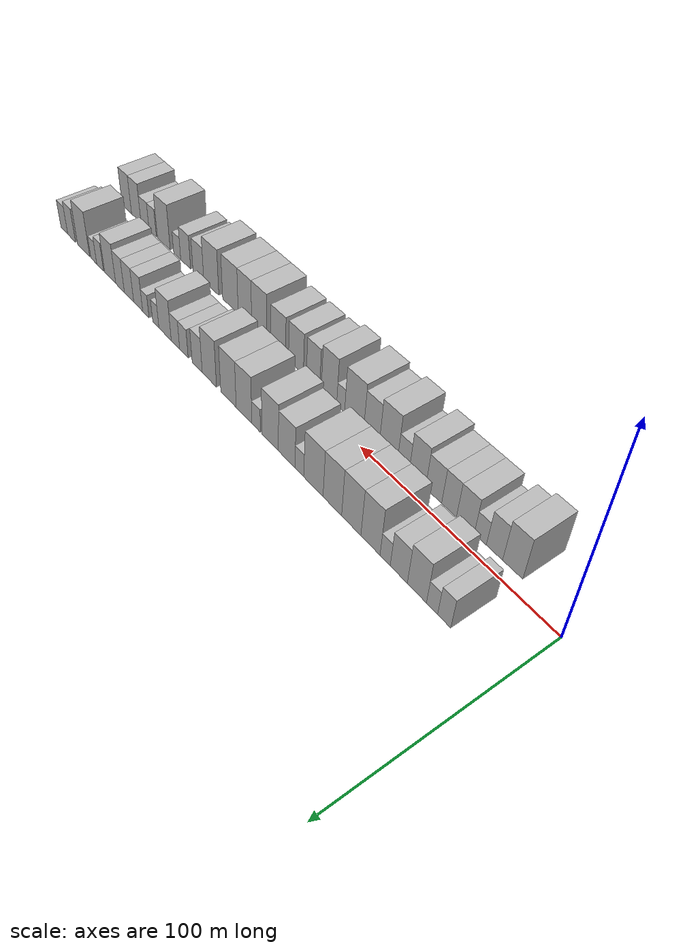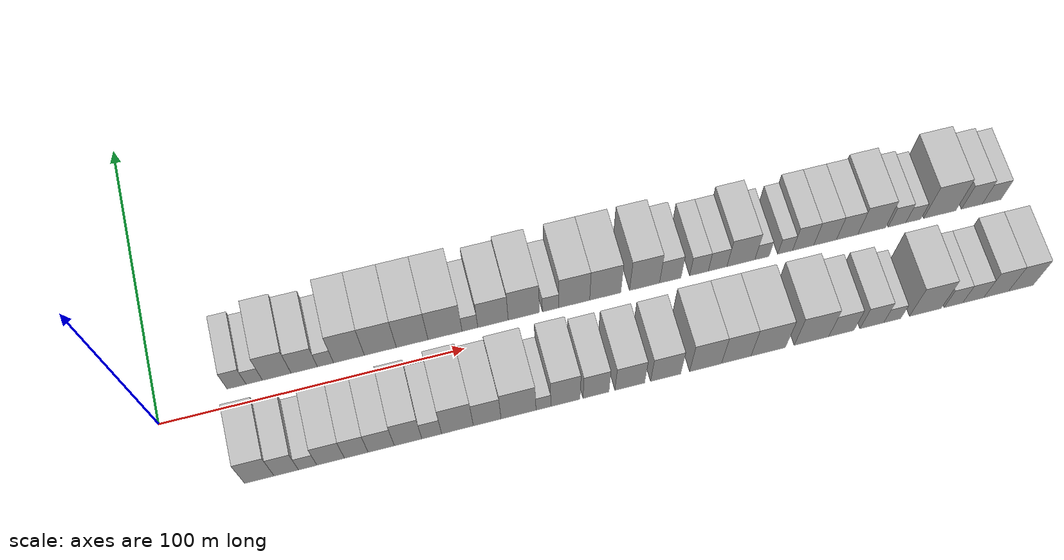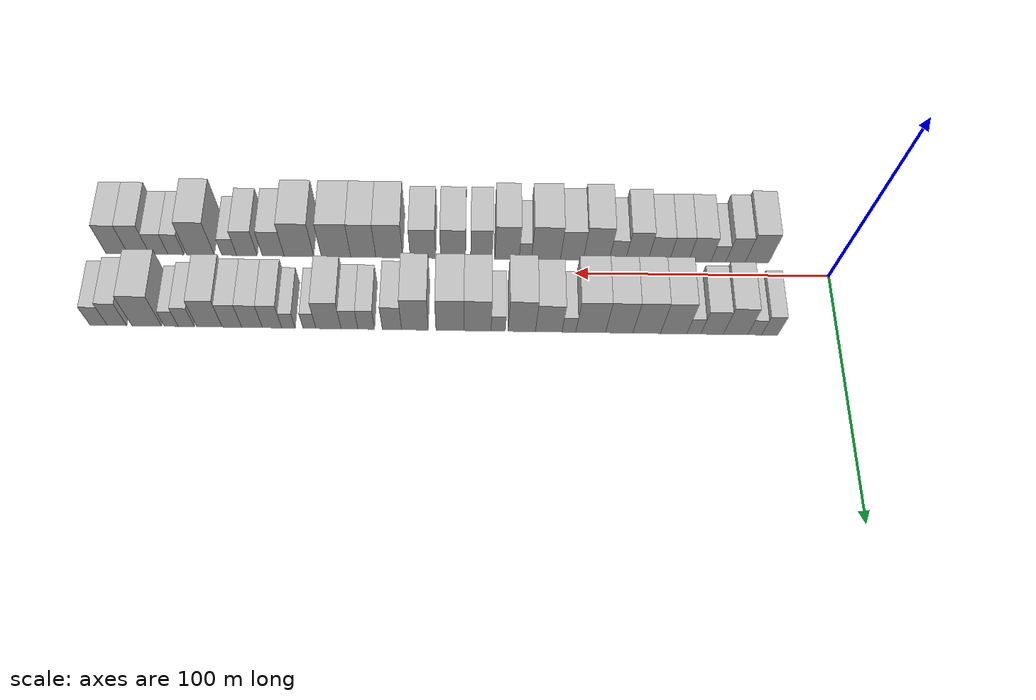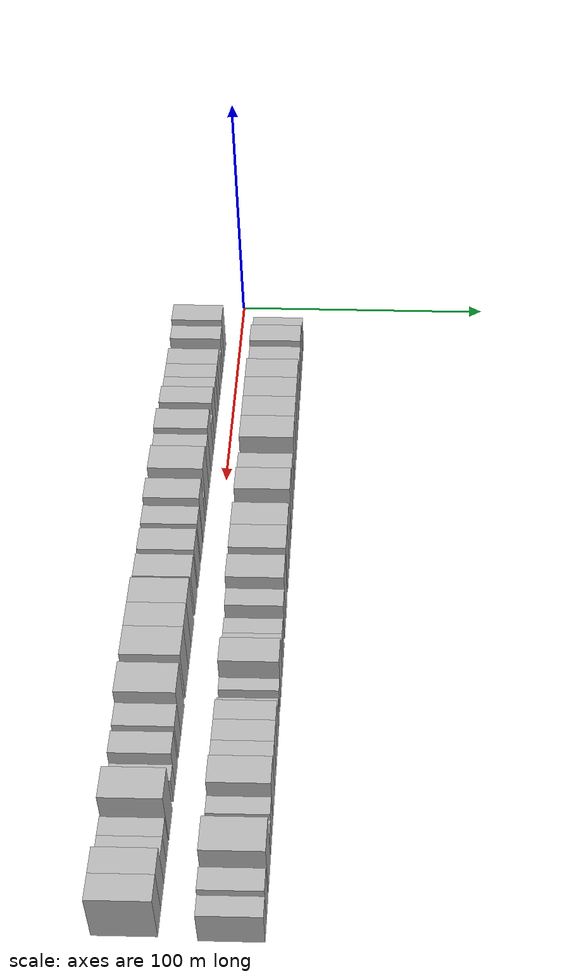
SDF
<sdf version="1.6">
 <world name="default">
  <scene>
   <sky><clouds><speed>12</speed></clouds></sky>
   <ambient>0.4 0.4 0.4 1</ambient>
   <background>0.7 0.7 0.7 1</background>
   <shadows>1</shadows>
  </scene>
  <gravity>0 0 -9.8066</gravity>
  <magnetic_field>6e-06 2.3e-05 -4.2e-05</magnetic_field>
  <physics default="0" name="default_physics" type="ode">
   <ode>
    <solver>
     <type>quick</type>
     <iters>10</iters>
     <sor>1.0</sor>
     <use_dynamic_moi_rescaling>0</use_dynamic_moi_rescaling>
    </solver>
    <constraints>
     <cfm>0</cfm>
     <erp>0.2</erp>
     <contact_max_correcting_vel>100</contact_max_correcting_vel>
     <contact_surface_layer>0.001</contact_surface_layer>
    </constraints>
   </ode>
   <max_step_size>0.004</max_step_size>
   <real_time_factor>1</real_time_factor>
   <real_time_update_rate>250</real_time_update_rate>
  </physics>
  <light name="sun" type="directional">
   <pose>0 0 10 0 0 0</pose>
   <diffuse>0.8 0.8 0.8 1</diffuse>
   <specular>0.2 0.2 0.2 1</specular>
   <attenuation>
    <range>1000</range>
    <constant>0.9</constant>
    <linear>0.01</linear>
    <quadratic>0.001</quadratic>
   </attenuation>
   <direction>-0.5 0.1 -0.9</direction>
  </light>
  <model name="building_1">
   <static>1</static>
   <pose>26.1032 16.0000 0 0.000000 0.000000 1.570796</pose>
   <link name="link">
    <pose>0 0 7.50 0 0 0</pose>
    <collision name="collision"><geometry><box><size>20.0000 6.2064 15.0000</size></box></geometry></collision>
    <visual name="visual">
     <cast_shadows>0</cast_shadows>
     <geometry><box><size>20.0000 6.2064 15.0000</size></box></geometry>
     <material>
      <script>
       <uri>model://HANNAS_wall/materials/scripts</uri>
       <uri>model://HANNAS_wall/materials/textures</uri>
       <name>vrc/HANNAS_wall</name>
      </script>
     </material>
    </visual>
   </link>
  </model>
  <model name="building_2">
   <static>1</static>
   <pose>31.8760 16.0000 0 0.000000 0.000000 1.570796</pose>
   <link name="link">
    <pose>0 0 6.00 0 0 0</pose>
    <collision name="collision"><geometry><box><size>20.0000 5.3392 12.0000</size></box></geometry></collision>
    <visual name="visual">
     <cast_shadows>0</cast_shadows>
     <geometry><box><size>20.0000 5.3392 12.0000</size></box></geometry>
     <material>
      <script>
       <uri>model://HANNAS_wall/materials/scripts</uri>
       <uri>model://HANNAS_wall/materials/textures</uri>
       <name>vrc/HANNAS_wall</name>
      </script>
     </material>
    </visual>
   </link>
  </model>
  <model name="building_3">
   <static>1</static>
   <pose>39.2401 16.0000 0 0.000000 0.000000 1.570796</pose>
   <link name="link">
    <pose>0 0 10.50 0 0 0</pose>
    <collision name="collision"><geometry><box><size>20.0000 9.3890 21.0000</size></box></geometry></collision>
    <visual name="visual">
     <cast_shadows>0</cast_shadows>
     <geometry><box><size>20.0000 9.3890 21.0000</size></box></geometry>
     <material>
      <script>
       <uri>model://HANNAS_wall/materials/scripts</uri>
       <uri>model://HANNAS_wall/materials/textures</uri>
       <name>vrc/HANNAS_wall</name>
      </script>
     </material>
    </visual>
   </link>
  </model>
  <model name="building_4">
   <static>1</static>
   <pose>48.2606 16.0000 0 0.000000 0.000000 1.570796</pose>
   <link name="link">
    <pose>0 0 9.00 0 0 0</pose>
    <collision name="collision"><geometry><box><size>20.0000 8.6518 18.0000</size></box></geometry></collision>
    <visual name="visual">
     <cast_shadows>0</cast_shadows>
     <geometry><box><size>20.0000 8.6518 18.0000</size></box></geometry>
     <material>
      <script>
       <uri>model://HANNAS_wall/materials/scripts</uri>
       <uri>model://HANNAS_wall/materials/textures</uri>
       <name>vrc/HANNAS_wall</name>
      </script>
     </material>
    </visual>
   </link>
  </model>
  <model name="building_5">
   <static>1</static>
   <pose>55.2424 16.0000 0 0.000000 0.000000 1.570796</pose>
   <link name="link">
    <pose>0 0 6.00 0 0 0</pose>
    <collision name="collision"><geometry><box><size>20.0000 5.3119 12.0000</size></box></geometry></collision>
    <visual name="visual">
     <cast_shadows>0</cast_shadows>
     <geometry><box><size>20.0000 5.3119 12.0000</size></box></geometry>
     <material>
      <script>
       <uri>model://HANNAS_wall/materials/scripts</uri>
       <uri>model://HANNAS_wall/materials/textures</uri>
       <name>vrc/HANNAS_wall</name>
      </script>
     </material>
    </visual>
   </link>
  </model>
  <model name="building_6">
   <static>1</static>
   <pose>62.9837 16.0000 0 0.000000 0.000000 1.570796</pose>
   <link name="link">
    <pose>0 0 12.00 0 0 0</pose>
    <collision name="collision"><geometry><box><size>20.0000 10.1707 24.0000</size></box></geometry></collision>
    <visual name="visual">
     <cast_shadows>0</cast_shadows>
     <geometry><box><size>20.0000 10.1707 24.0000</size></box></geometry>
     <material>
      <script>
       <uri>model://HANNAS_wall/materials/scripts</uri>
       <uri>model://HANNAS_wall/materials/textures</uri>
       <name>vrc/HANNAS_wall</name>
      </script>
     </material>
    </visual>
   </link>
  </model>
  <model name="building_7">
   <static>1</static>
   <pose>73.3679 16.0000 0 0.000000 0.000000 1.570796</pose>
   <link name="link">
    <pose>0 0 12.00 0 0 0</pose>
    <collision name="collision"><geometry><box><size>20.0000 10.5977 24.0000</size></box></geometry></collision>
    <visual name="visual">
     <cast_shadows>0</cast_shadows>
     <geometry><box><size>20.0000 10.5977 24.0000</size></box></geometry>
     <material>
      <script>
       <uri>model://HANNAS_wall/materials/scripts</uri>
       <uri>model://HANNAS_wall/materials/textures</uri>
       <name>vrc/HANNAS_wall</name>
      </script>
     </material>
    </visual>
   </link>
  </model>
  <model name="building_8">
   <static>1</static>
   <pose>83.9444 16.0000 0 0.000000 0.000000 1.570796</pose>
   <link name="link">
    <pose>0 0 12.00 0 0 0</pose>
    <collision name="collision"><geometry><box><size>20.0000 10.5551 24.0000</size></box></geometry></collision>
    <visual name="visual">
     <cast_shadows>0</cast_shadows>
     <geometry><box><size>20.0000 10.5551 24.0000</size></box></geometry>
     <material>
      <script>
       <uri>model://HANNAS_wall/materials/scripts</uri>
       <uri>model://HANNAS_wall/materials/textures</uri>
       <name>vrc/HANNAS_wall</name>
      </script>
     </material>
    </visual>
   </link>
  </model>
  <model name="building_9">
   <static>1</static>
   <pose>94.9204 16.0000 0 0.000000 0.000000 1.570796</pose>
   <link name="link">
    <pose>0 0 12.00 0 0 0</pose>
    <collision name="collision"><geometry><box><size>20.0000 11.3969 24.0000</size></box></geometry></collision>
    <visual name="visual">
     <cast_shadows>0</cast_shadows>
     <geometry><box><size>20.0000 11.3969 24.0000</size></box></geometry>
     <material>
      <script>
       <uri>model://HANNAS_wall/materials/scripts</uri>
       <uri>model://HANNAS_wall/materials/textures</uri>
       <name>vrc/HANNAS_wall</name>
      </script>
     </material>
    </visual>
   </link>
  </model>
  <model name="building_10">
   <static>1</static>
   <pose>103.2601 16.0000 0 0.000000 0.000000 1.570796</pose>
   <link name="link">
    <pose>0 0 6.00 0 0 0</pose>
    <collision name="collision"><geometry><box><size>20.0000 5.2826 12.0000</size></box></geometry></collision>
    <visual name="visual">
     <cast_shadows>0</cast_shadows>
     <geometry><box><size>20.0000 5.2826 12.0000</size></box></geometry>
     <material>
      <script>
       <uri>model://HANNAS_wall/materials/scripts</uri>
       <uri>model://HANNAS_wall/materials/textures</uri>
       <name>vrc/HANNAS_wall</name>
      </script>
     </material>
    </visual>
   </link>
  </model>
  <model name="building_11">
   <static>1</static>
   <pose>111.0260 16.0000 0 0.000000 0.000000 1.570796</pose>
   <link name="link">
    <pose>0 0 10.50 0 0 0</pose>
    <collision name="collision"><geometry><box><size>20.0000 10.2492 21.0000</size></box></geometry></collision>
    <visual name="visual">
     <cast_shadows>0</cast_shadows>
     <geometry><box><size>20.0000 10.2492 21.0000</size></box></geometry>
     <material>
      <script>
       <uri>model://HANNAS_wall/materials/scripts</uri>
       <uri>model://HANNAS_wall/materials/textures</uri>
       <name>vrc/HANNAS_wall</name>
      </script>
     </material>
    </visual>
   </link>
  </model>
  <model name="building_12">
   <static>1</static>
   <pose>121.4184 16.0000 0 0.000000 0.000000 1.570796</pose>
   <link name="link">
    <pose>0 0 12.00 0 0 0</pose>
    <collision name="collision"><geometry><box><size>20.0000 10.5356 24.0000</size></box></geometry></collision>
    <visual name="visual">
     <cast_shadows>0</cast_shadows>
     <geometry><box><size>20.0000 10.5356 24.0000</size></box></geometry>
     <material>
      <script>
       <uri>model://HANNAS_wall/materials/scripts</uri>
       <uri>model://HANNAS_wall/materials/textures</uri>
       <name>vrc/HANNAS_wall</name>
      </script>
     </material>
    </visual>
   </link>
  </model>
  <model name="building_13">
   <static>1</static>
   <pose>130.4787 16.0000 0 0.000000 0.000000 1.570796</pose>
   <link name="link">
    <pose>0 0 6.00 0 0 0</pose>
    <collision name="collision"><geometry><box><size>20.0000 5.5848 12.0000</size></box></geometry></collision>
    <visual name="visual">
     <cast_shadows>0</cast_shadows>
     <geometry><box><size>20.0000 5.5848 12.0000</size></box></geometry>
     <material>
      <script>
       <uri>model://HANNAS_wall/materials/scripts</uri>
       <uri>model://HANNAS_wall/materials/textures</uri>
       <name>vrc/HANNAS_wall</name>
      </script>
     </material>
    </visual>
   </link>
  </model>
  <model name="building_14">
   <static>1</static>
   <pose>138.5104 16.0000 0 0.000000 0.000000 1.570796</pose>
   <link name="link">
    <pose>0 0 12.00 0 0 0</pose>
    <collision name="collision"><geometry><box><size>20.0000 10.4786 24.0000</size></box></geometry></collision>
    <visual name="visual">
     <cast_shadows>0</cast_shadows>
     <geometry><box><size>20.0000 10.4786 24.0000</size></box></geometry>
     <material>
      <script>
       <uri>model://HANNAS_wall/materials/scripts</uri>
       <uri>model://HANNAS_wall/materials/textures</uri>
       <name>vrc/HANNAS_wall</name>
      </script>
     </material>
    </visual>
   </link>
  </model>
  <model name="building_15">
   <static>1</static>
   <pose>149.0754 16.0000 0 0.000000 0.000000 1.570796</pose>
   <link name="link">
    <pose>0 0 12.00 0 0 0</pose>
    <collision name="collision"><geometry><box><size>20.0000 10.6516 24.0000</size></box></geometry></collision>
    <visual name="visual">
     <cast_shadows>0</cast_shadows>
     <geometry><box><size>20.0000 10.6516 24.0000</size></box></geometry>
     <material>
      <script>
       <uri>model://HANNAS_wall/materials/scripts</uri>
       <uri>model://HANNAS_wall/materials/textures</uri>
       <name>vrc/HANNAS_wall</name>
      </script>
     </material>
    </visual>
   </link>
  </model>
  <model name="building_16">
   <static>1</static>
   <pose>162.5421 16.0000 0 0.000000 0.000000 1.570796</pose>
   <link name="link">
    <pose>0 0 12.00 0 0 0</pose>
    <collision name="collision"><geometry><box><size>20.0000 10.2817 24.0000</size></box></geometry></collision>
    <visual name="visual">
     <cast_shadows>0</cast_shadows>
     <geometry><box><size>20.0000 10.2817 24.0000</size></box></geometry>
     <material>
      <script>
       <uri>model://HANNAS_wall/materials/scripts</uri>
       <uri>model://HANNAS_wall/materials/textures</uri>
       <name>vrc/HANNAS_wall</name>
      </script>
     </material>
    </visual>
   </link>
  </model>
  <model name="building_17">
   <static>1</static>
   <pose>171.3868 16.0000 0 0.000000 0.000000 1.570796</pose>
   <link name="link">
    <pose>0 0 9.00 0 0 0</pose>
    <collision name="collision"><geometry><box><size>20.0000 7.4078 18.0000</size></box></geometry></collision>
    <visual name="visual">
     <cast_shadows>0</cast_shadows>
     <geometry><box><size>20.0000 7.4078 18.0000</size></box></geometry>
     <material>
      <script>
       <uri>model://HANNAS_wall/materials/scripts</uri>
       <uri>model://HANNAS_wall/materials/textures</uri>
       <name>vrc/HANNAS_wall</name>
      </script>
     </material>
    </visual>
   </link>
  </model>
  <model name="building_18">
   <static>1</static>
   <pose>181.2997 16.0000 0 0.000000 0.000000 1.570796</pose>
   <link name="link">
    <pose>0 0 7.50 0 0 0</pose>
    <collision name="collision"><geometry><box><size>20.0000 6.4180 15.0000</size></box></geometry></collision>
    <visual name="visual">
     <cast_shadows>0</cast_shadows>
     <geometry><box><size>20.0000 6.4180 15.0000</size></box></geometry>
     <material>
      <script>
       <uri>model://HANNAS_wall/materials/scripts</uri>
       <uri>model://HANNAS_wall/materials/textures</uri>
       <name>vrc/HANNAS_wall</name>
      </script>
     </material>
    </visual>
   </link>
  </model>
  <model name="building_19">
   <static>1</static>
   <pose>187.7610 16.0000 0 0.000000 0.000000 1.570796</pose>
   <link name="link">
    <pose>0 0 7.50 0 0 0</pose>
    <collision name="collision"><geometry><box><size>20.0000 6.5044 15.0000</size></box></geometry></collision>
    <visual name="visual">
     <cast_shadows>0</cast_shadows>
     <geometry><box><size>20.0000 6.5044 15.0000</size></box></geometry>
     <material>
      <script>
       <uri>model://HANNAS_wall/materials/scripts</uri>
       <uri>model://HANNAS_wall/materials/textures</uri>
       <name>vrc/HANNAS_wall</name>
      </script>
     </material>
    </visual>
   </link>
  </model>
  <model name="building_20">
   <static>1</static>
   <pose>195.8750 16.0000 0 0.000000 0.000000 1.570796</pose>
   <link name="link">
    <pose>0 0 10.50 0 0 0</pose>
    <collision name="collision"><geometry><box><size>20.0000 9.7236 21.0000</size></box></geometry></collision>
    <visual name="visual">
     <cast_shadows>0</cast_shadows>
     <geometry><box><size>20.0000 9.7236 21.0000</size></box></geometry>
     <material>
      <script>
       <uri>model://HANNAS_wall/materials/scripts</uri>
       <uri>model://HANNAS_wall/materials/textures</uri>
       <name>vrc/HANNAS_wall</name>
      </script>
     </material>
    </visual>
   </link>
  </model>
  <model name="building_21">
   <static>1</static>
   <pose>203.2164 16.0000 0 0.000000 0.000000 1.570796</pose>
   <link name="link">
    <pose>0 0 6.00 0 0 0</pose>
    <collision name="collision"><geometry><box><size>20.0000 4.9591 12.0000</size></box></geometry></collision>
    <visual name="visual">
     <cast_shadows>0</cast_shadows>
     <geometry><box><size>20.0000 4.9591 12.0000</size></box></geometry>
     <material>
      <script>
       <uri>model://HANNAS_wall/materials/scripts</uri>
       <uri>model://HANNAS_wall/materials/textures</uri>
       <name>vrc/HANNAS_wall</name>
      </script>
     </material>
    </visual>
   </link>
  </model>
  <model name="building_22">
   <static>1</static>
   <pose>211.2967 16.0000 0 0.000000 0.000000 1.570796</pose>
   <link name="link">
    <pose>0 0 6.00 0 0 0</pose>
    <collision name="collision"><geometry><box><size>20.0000 5.2015 12.0000</size></box></geometry></collision>
    <visual name="visual">
     <cast_shadows>0</cast_shadows>
     <geometry><box><size>20.0000 5.2015 12.0000</size></box></geometry>
     <material>
      <script>
       <uri>model://HANNAS_wall/materials/scripts</uri>
       <uri>model://HANNAS_wall/materials/textures</uri>
       <name>vrc/HANNAS_wall</name>
      </script>
     </material>
    </visual>
   </link>
  </model>
  <model name="building_23">
   <static>1</static>
   <pose>217.6205 16.0000 0 0.000000 0.000000 1.570796</pose>
   <link name="link">
    <pose>0 0 9.00 0 0 0</pose>
    <collision name="collision"><geometry><box><size>20.0000 7.4462 18.0000</size></box></geometry></collision>
    <visual name="visual">
     <cast_shadows>0</cast_shadows>
     <geometry><box><size>20.0000 7.4462 18.0000</size></box></geometry>
     <material>
      <script>
       <uri>model://HANNAS_wall/materials/scripts</uri>
       <uri>model://HANNAS_wall/materials/textures</uri>
       <name>vrc/HANNAS_wall</name>
      </script>
     </material>
    </visual>
   </link>
  </model>
  <model name="building_24">
   <static>1</static>
   <pose>225.3362 16.0000 0 0.000000 0.000000 1.570796</pose>
   <link name="link">
    <pose>0 0 9.00 0 0 0</pose>
    <collision name="collision"><geometry><box><size>20.0000 7.9854 18.0000</size></box></geometry></collision>
    <visual name="visual">
     <cast_shadows>0</cast_shadows>
     <geometry><box><size>20.0000 7.9854 18.0000</size></box></geometry>
     <material>
      <script>
       <uri>model://HANNAS_wall/materials/scripts</uri>
       <uri>model://HANNAS_wall/materials/textures</uri>
       <name>vrc/HANNAS_wall</name>
      </script>
     </material>
    </visual>
   </link>
  </model>
  <model name="building_25">
   <static>1</static>
   <pose>233.0954 16.0000 0 0.000000 0.000000 1.570796</pose>
   <link name="link">
    <pose>0 0 9.00 0 0 0</pose>
    <collision name="collision"><geometry><box><size>20.0000 7.5330 18.0000</size></box></geometry></collision>
    <visual name="visual">
     <cast_shadows>0</cast_shadows>
     <geometry><box><size>20.0000 7.5330 18.0000</size></box></geometry>
     <material>
      <script>
       <uri>model://HANNAS_wall/materials/scripts</uri>
       <uri>model://HANNAS_wall/materials/textures</uri>
       <name>vrc/HANNAS_wall</name>
      </script>
     </material>
    </visual>
   </link>
  </model>
  <model name="building_26">
   <static>1</static>
   <pose>241.7802 16.0000 0 0.000000 0.000000 1.570796</pose>
   <link name="link">
    <pose>0 0 10.50 0 0 0</pose>
    <collision name="collision"><geometry><box><size>20.0000 9.8365 21.0000</size></box></geometry></collision>
    <visual name="visual">
     <cast_shadows>0</cast_shadows>
     <geometry><box><size>20.0000 9.8365 21.0000</size></box></geometry>
     <material>
      <script>
       <uri>model://HANNAS_wall/materials/scripts</uri>
       <uri>model://HANNAS_wall/materials/textures</uri>
       <name>vrc/HANNAS_wall</name>
      </script>
     </material>
    </visual>
   </link>
  </model>
  <model name="building_27">
   <static>1</static>
   <pose>250.8081 16.0000 0 0.000000 0.000000 1.570796</pose>
   <link name="link">
    <pose>0 0 7.50 0 0 0</pose>
    <collision name="collision"><geometry><box><size>20.0000 6.2193 15.0000</size></box></geometry></collision>
    <visual name="visual">
     <cast_shadows>0</cast_shadows>
     <geometry><box><size>20.0000 6.2193 15.0000</size></box></geometry>
     <material>
      <script>
       <uri>model://HANNAS_wall/materials/scripts</uri>
       <uri>model://HANNAS_wall/materials/textures</uri>
       <name>vrc/HANNAS_wall</name>
      </script>
     </material>
    </visual>
   </link>
  </model>
  <model name="building_28">
   <static>1</static>
   <pose>256.6088 16.0000 0 0.000000 0.000000 1.570796</pose>
   <link name="link">
    <pose>0 0 6.00 0 0 0</pose>
    <collision name="collision"><geometry><box><size>20.0000 5.3822 12.0000</size></box></geometry></collision>
    <visual name="visual">
     <cast_shadows>0</cast_shadows>
     <geometry><box><size>20.0000 5.3822 12.0000</size></box></geometry>
     <material>
      <script>
       <uri>model://HANNAS_wall/materials/scripts</uri>
       <uri>model://HANNAS_wall/materials/textures</uri>
       <name>vrc/HANNAS_wall</name>
      </script>
     </material>
    </visual>
   </link>
  </model>
  <model name="building_29">
   <static>1</static>
   <pose>266.0552 16.0000 0 0.000000 0.000000 1.570796</pose>
   <link name="link">
    <pose>0 0 12.00 0 0 0</pose>
    <collision name="collision"><geometry><box><size>20.0000 11.5105 24.0000</size></box></geometry></collision>
    <visual name="visual">
     <cast_shadows>0</cast_shadows>
     <geometry><box><size>20.0000 11.5105 24.0000</size></box></geometry>
     <material>
      <script>
       <uri>model://HANNAS_wall/materials/scripts</uri>
       <uri>model://HANNAS_wall/materials/textures</uri>
       <name>vrc/HANNAS_wall</name>
      </script>
     </material>
    </visual>
   </link>
  </model>
  <model name="building_30">
   <static>1</static>
   <pose>277.5711 16.0000 0 0.000000 0.000000 1.570796</pose>
   <link name="link">
    <pose>0 0 9.00 0 0 0</pose>
    <collision name="collision"><geometry><box><size>20.0000 7.5214 18.0000</size></box></geometry></collision>
    <visual name="visual">
     <cast_shadows>0</cast_shadows>
     <geometry><box><size>20.0000 7.5214 18.0000</size></box></geometry>
     <material>
      <script>
       <uri>model://HANNAS_wall/materials/scripts</uri>
       <uri>model://HANNAS_wall/materials/textures</uri>
       <name>vrc/HANNAS_wall</name>
      </script>
     </material>
    </visual>
   </link>
  </model>
  <model name="building_31">
   <static>1</static>
   <pose>284.6856 16.0000 0 0.000000 0.000000 1.570796</pose>
   <link name="link">
    <pose>0 0 7.50 0 0 0</pose>
    <collision name="collision"><geometry><box><size>20.0000 6.7074 15.0000</size></box></geometry></collision>
    <visual name="visual">
     <cast_shadows>0</cast_shadows>
     <geometry><box><size>20.0000 6.7074 15.0000</size></box></geometry>
     <material>
      <script>
       <uri>model://HANNAS_wall/materials/scripts</uri>
       <uri>model://HANNAS_wall/materials/textures</uri>
       <name>vrc/HANNAS_wall</name>
      </script>
     </material>
    </visual>
   </link>
  </model>
  <model name="building_32">
   <static>1</static>
   <pose>27.6988 -16.0000 0 0.000000 0.000000 1.570796</pose>
   <link name="link">
    <pose>0 0 10.50 0 0 0</pose>
    <collision name="collision"><geometry><box><size>20.0000 9.3976 21.0000</size></box></geometry></collision>
    <visual name="visual">
     <cast_shadows>0</cast_shadows>
     <geometry><box><size>20.0000 9.3976 21.0000</size></box></geometry>
     <material>
      <script>
       <uri>model://HANNAS_wall/materials/scripts</uri>
       <uri>model://HANNAS_wall/materials/textures</uri>
       <name>vrc/HANNAS_wall</name>
      </script>
     </material>
    </visual>
   </link>
  </model>
  <model name="building_33">
   <static>1</static>
   <pose>36.2740 -16.0000 0 0.000000 0.000000 1.570796</pose>
   <link name="link">
    <pose>0 0 9.00 0 0 0</pose>
    <collision name="collision"><geometry><box><size>20.0000 7.7527 18.0000</size></box></geometry></collision>
    <visual name="visual">
     <cast_shadows>0</cast_shadows>
     <geometry><box><size>20.0000 7.7527 18.0000</size></box></geometry>
     <material>
      <script>
       <uri>model://HANNAS_wall/materials/scripts</uri>
       <uri>model://HANNAS_wall/materials/textures</uri>
       <name>vrc/HANNAS_wall</name>
      </script>
     </material>
    </visual>
   </link>
  </model>
  <model name="building_34">
   <static>1</static>
   <pose>43.1035 -16.0000 0 0.000000 0.000000 1.570796</pose>
   <link name="link">
    <pose>0 0 6.00 0 0 0</pose>
    <collision name="collision"><geometry><box><size>20.0000 5.9064 12.0000</size></box></geometry></collision>
    <visual name="visual">
     <cast_shadows>0</cast_shadows>
     <geometry><box><size>20.0000 5.9064 12.0000</size></box></geometry>
     <material>
      <script>
       <uri>model://HANNAS_wall/materials/scripts</uri>
       <uri>model://HANNAS_wall/materials/textures</uri>
       <name>vrc/HANNAS_wall</name>
      </script>
     </material>
    </visual>
   </link>
  </model>
  <model name="building_35">
   <static>1</static>
   <pose>50.5000 -16.0000 0 0.000000 0.000000 1.570796</pose>
   <link name="link">
    <pose>0 0 9.00 0 0 0</pose>
    <collision name="collision"><geometry><box><size>20.0000 8.8864 18.0000</size></box></geometry></collision>
    <visual name="visual">
     <cast_shadows>0</cast_shadows>
     <geometry><box><size>20.0000 8.8864 18.0000</size></box></geometry>
     <material>
      <script>
       <uri>model://HANNAS_wall/materials/scripts</uri>
       <uri>model://HANNAS_wall/materials/textures</uri>
       <name>vrc/HANNAS_wall</name>
      </script>
     </material>
    </visual>
   </link>
  </model>
  <model name="building_36">
   <static>1</static>
   <pose>58.7499 -16.0000 0 0.000000 0.000000 1.570796</pose>
   <link name="link">
    <pose>0 0 9.00 0 0 0</pose>
    <collision name="collision"><geometry><box><size>20.0000 7.6134 18.0000</size></box></geometry></collision>
    <visual name="visual">
     <cast_shadows>0</cast_shadows>
     <geometry><box><size>20.0000 7.6134 18.0000</size></box></geometry>
     <material>
      <script>
       <uri>model://HANNAS_wall/materials/scripts</uri>
       <uri>model://HANNAS_wall/materials/textures</uri>
       <name>vrc/HANNAS_wall</name>
      </script>
     </material>
    </visual>
   </link>
  </model>
  <model name="building_37">
   <static>1</static>
   <pose>66.7973 -16.0000 0 0.000000 0.000000 1.570796</pose>
   <link name="link">
    <pose>0 0 9.00 0 0 0</pose>
    <collision name="collision"><geometry><box><size>20.0000 8.4815 18.0000</size></box></geometry></collision>
    <visual name="visual">
     <cast_shadows>0</cast_shadows>
     <geometry><box><size>20.0000 8.4815 18.0000</size></box></geometry>
     <material>
      <script>
       <uri>model://HANNAS_wall/materials/scripts</uri>
       <uri>model://HANNAS_wall/materials/textures</uri>
       <name>vrc/HANNAS_wall</name>
      </script>
     </material>
    </visual>
   </link>
  </model>
  <model name="building_38">
   <static>1</static>
   <pose>75.5084 -16.0000 0 0.000000 0.000000 1.570796</pose>
   <link name="link">
    <pose>0 0 10.50 0 0 0</pose>
    <collision name="collision"><geometry><box><size>20.0000 8.9406 21.0000</size></box></geometry></collision>
    <visual name="visual">
     <cast_shadows>0</cast_shadows>
     <geometry><box><size>20.0000 8.9406 21.0000</size></box></geometry>
     <material>
      <script>
       <uri>model://HANNAS_wall/materials/scripts</uri>
       <uri>model://HANNAS_wall/materials/textures</uri>
       <name>vrc/HANNAS_wall</name>
      </script>
     </material>
    </visual>
   </link>
  </model>
  <model name="building_39">
   <static>1</static>
   <pose>83.2021 -16.0000 0 0.000000 0.000000 1.570796</pose>
   <link name="link">
    <pose>0 0 7.50 0 0 0</pose>
    <collision name="collision"><geometry><box><size>20.0000 6.4468 15.0000</size></box></geometry></collision>
    <visual name="visual">
     <cast_shadows>0</cast_shadows>
     <geometry><box><size>20.0000 6.4468 15.0000</size></box></geometry>
     <material>
      <script>
       <uri>model://HANNAS_wall/materials/scripts</uri>
       <uri>model://HANNAS_wall/materials/textures</uri>
       <name>vrc/HANNAS_wall</name>
      </script>
     </material>
    </visual>
   </link>
  </model>
  <model name="building_40">
   <static>1</static>
   <pose>91.5867 -16.0000 0 0.000000 0.000000 1.570796</pose>
   <link name="link">
    <pose>0 0 12.00 0 0 0</pose>
    <collision name="collision"><geometry><box><size>20.0000 10.3224 24.0000</size></box></geometry></collision>
    <visual name="visual">
     <cast_shadows>0</cast_shadows>
     <geometry><box><size>20.0000 10.3224 24.0000</size></box></geometry>
     <material>
      <script>
       <uri>model://HANNAS_wall/materials/scripts</uri>
       <uri>model://HANNAS_wall/materials/textures</uri>
       <name>vrc/HANNAS_wall</name>
      </script>
     </material>
    </visual>
   </link>
  </model>
  <model name="building_41">
   <static>1</static>
   <pose>101.2965 -16.0000 0 0.000000 0.000000 1.570796</pose>
   <link name="link">
    <pose>0 0 10.50 0 0 0</pose>
    <collision name="collision"><geometry><box><size>20.0000 9.0972 21.0000</size></box></geometry></collision>
    <visual name="visual">
     <cast_shadows>0</cast_shadows>
     <geometry><box><size>20.0000 9.0972 21.0000</size></box></geometry>
     <material>
      <script>
       <uri>model://HANNAS_wall/materials/scripts</uri>
       <uri>model://HANNAS_wall/materials/textures</uri>
       <name>vrc/HANNAS_wall</name>
      </script>
     </material>
    </visual>
   </link>
  </model>
  <model name="building_42">
   <static>1</static>
   <pose>111.5925 -16.0000 0 0.000000 0.000000 1.570796</pose>
   <link name="link">
    <pose>0 0 12.00 0 0 0</pose>
    <collision name="collision"><geometry><box><size>20.0000 11.4948 24.0000</size></box></geometry></collision>
    <visual name="visual">
     <cast_shadows>0</cast_shadows>
     <geometry><box><size>20.0000 11.4948 24.0000</size></box></geometry>
     <material>
      <script>
       <uri>model://HANNAS_wall/materials/scripts</uri>
       <uri>model://HANNAS_wall/materials/textures</uri>
       <name>vrc/HANNAS_wall</name>
      </script>
     </material>
    </visual>
   </link>
  </model>
  <model name="building_43">
   <static>1</static>
   <pose>119.7766 -16.0000 0 0.000000 0.000000 1.570796</pose>
   <link name="link">
    <pose>0 0 6.00 0 0 0</pose>
    <collision name="collision"><geometry><box><size>20.0000 4.8736 12.0000</size></box></geometry></collision>
    <visual name="visual">
     <cast_shadows>0</cast_shadows>
     <geometry><box><size>20.0000 4.8736 12.0000</size></box></geometry>
     <material>
      <script>
       <uri>model://HANNAS_wall/materials/scripts</uri>
       <uri>model://HANNAS_wall/materials/textures</uri>
       <name>vrc/HANNAS_wall</name>
      </script>
     </material>
    </visual>
   </link>
  </model>
  <model name="building_44">
   <static>1</static>
   <pose>127.0540 -16.0000 0 0.000000 0.000000 1.570796</pose>
   <link name="link">
    <pose>0 0 12.00 0 0 0</pose>
    <collision name="collision"><geometry><box><size>20.0000 9.6810 24.0000</size></box></geometry></collision>
    <visual name="visual">
     <cast_shadows>0</cast_shadows>
     <geometry><box><size>20.0000 9.6810 24.0000</size></box></geometry>
     <material>
      <script>
       <uri>model://HANNAS_wall/materials/scripts</uri>
       <uri>model://HANNAS_wall/materials/textures</uri>
       <name>vrc/HANNAS_wall</name>
      </script>
     </material>
    </visual>
   </link>
  </model>
  <model name="building_45">
   <static>1</static>
   <pose>137.2014 -16.0000 0 0.000000 0.000000 1.570796</pose>
   <link name="link">
    <pose>0 0 10.50 0 0 0</pose>
    <collision name="collision"><geometry><box><size>20.0000 8.6139 21.0000</size></box></geometry></collision>
    <visual name="visual">
     <cast_shadows>0</cast_shadows>
     <geometry><box><size>20.0000 8.6139 21.0000</size></box></geometry>
     <material>
      <script>
       <uri>model://HANNAS_wall/materials/scripts</uri>
       <uri>model://HANNAS_wall/materials/textures</uri>
       <name>vrc/HANNAS_wall</name>
      </script>
     </material>
    </visual>
   </link>
  </model>
  <model name="building_46">
   <static>1</static>
   <pose>148.4715 -16.0000 0 0.000000 0.000000 1.570796</pose>
   <link name="link">
    <pose>0 0 10.50 0 0 0</pose>
    <collision name="collision"><geometry><box><size>20.0000 9.9262 21.0000</size></box></geometry></collision>
    <visual name="visual">
     <cast_shadows>0</cast_shadows>
     <geometry><box><size>20.0000 9.9262 21.0000</size></box></geometry>
     <material>
      <script>
       <uri>model://HANNAS_wall/materials/scripts</uri>
       <uri>model://HANNAS_wall/materials/textures</uri>
       <name>vrc/HANNAS_wall</name>
      </script>
     </material>
    </visual>
   </link>
  </model>
  <model name="building_47">
   <static>1</static>
   <pose>160.4855 -16.0000 0 0.000000 0.000000 1.570796</pose>
   <link name="link">
    <pose>0 0 10.50 0 0 0</pose>
    <collision name="collision"><geometry><box><size>20.0000 10.1018 21.0000</size></box></geometry></collision>
    <visual name="visual">
     <cast_shadows>0</cast_shadows>
     <geometry><box><size>20.0000 10.1018 21.0000</size></box></geometry>
     <material>
      <script>
       <uri>model://HANNAS_wall/materials/scripts</uri>
       <uri>model://HANNAS_wall/materials/textures</uri>
       <name>vrc/HANNAS_wall</name>
      </script>
     </material>
    </visual>
   </link>
  </model>
  <model name="building_48">
   <static>1</static>
   <pose>173.9214 -16.0000 0 0.000000 0.000000 1.570796</pose>
   <link name="link">
    <pose>0 0 12.00 0 0 0</pose>
    <collision name="collision"><geometry><box><size>20.0000 10.7699 24.0000</size></box></geometry></collision>
    <visual name="visual">
     <cast_shadows>0</cast_shadows>
     <geometry><box><size>20.0000 10.7699 24.0000</size></box></geometry>
     <material>
      <script>
       <uri>model://HANNAS_wall/materials/scripts</uri>
       <uri>model://HANNAS_wall/materials/textures</uri>
       <name>vrc/HANNAS_wall</name>
      </script>
     </material>
    </visual>
   </link>
  </model>
  <model name="building_49">
   <static>1</static>
   <pose>184.2970 -16.0000 0 0.000000 0.000000 1.570796</pose>
   <link name="link">
    <pose>0 0 12.00 0 0 0</pose>
    <collision name="collision"><geometry><box><size>20.0000 9.9814 24.0000</size></box></geometry></collision>
    <visual name="visual">
     <cast_shadows>0</cast_shadows>
     <geometry><box><size>20.0000 9.9814 24.0000</size></box></geometry>
     <material>
      <script>
       <uri>model://HANNAS_wall/materials/scripts</uri>
       <uri>model://HANNAS_wall/materials/textures</uri>
       <name>vrc/HANNAS_wall</name>
      </script>
     </material>
    </visual>
   </link>
  </model>
  <model name="building_50">
   <static>1</static>
   <pose>195.1670 -16.0000 0 0.000000 0.000000 1.570796</pose>
   <link name="link">
    <pose>0 0 12.00 0 0 0</pose>
    <collision name="collision"><geometry><box><size>20.0000 11.7585 24.0000</size></box></geometry></collision>
    <visual name="visual">
     <cast_shadows>0</cast_shadows>
     <geometry><box><size>20.0000 11.7585 24.0000</size></box></geometry>
     <material>
      <script>
       <uri>model://HANNAS_wall/materials/scripts</uri>
       <uri>model://HANNAS_wall/materials/textures</uri>
       <name>vrc/HANNAS_wall</name>
      </script>
     </material>
    </visual>
   </link>
  </model>
  <model name="building_51">
   <static>1</static>
   <pose>209.9599 -16.0000 0 0.000000 0.000000 1.570796</pose>
   <link name="link">
    <pose>0 0 12.00 0 0 0</pose>
    <collision name="collision"><geometry><box><size>20.0000 11.8273 24.0000</size></box></geometry></collision>
    <visual name="visual">
     <cast_shadows>0</cast_shadows>
     <geometry><box><size>20.0000 11.8273 24.0000</size></box></geometry>
     <material>
      <script>
       <uri>model://HANNAS_wall/materials/scripts</uri>
       <uri>model://HANNAS_wall/materials/textures</uri>
       <name>vrc/HANNAS_wall</name>
      </script>
     </material>
    </visual>
   </link>
  </model>
  <model name="building_52">
   <static>1</static>
   <pose>220.2306 -16.0000 0 0.000000 0.000000 1.570796</pose>
   <link name="link">
    <pose>0 0 9.00 0 0 0</pose>
    <collision name="collision"><geometry><box><size>20.0000 8.7141 18.0000</size></box></geometry></collision>
    <visual name="visual">
     <cast_shadows>0</cast_shadows>
     <geometry><box><size>20.0000 8.7141 18.0000</size></box></geometry>
     <material>
      <script>
       <uri>model://HANNAS_wall/materials/scripts</uri>
       <uri>model://HANNAS_wall/materials/textures</uri>
       <name>vrc/HANNAS_wall</name>
      </script>
     </material>
    </visual>
   </link>
  </model>
  <model name="building_53">
   <static>1</static>
   <pose>230.6969 -16.0000 0 0.000000 0.000000 1.570796</pose>
   <link name="link">
    <pose>0 0 9.00 0 0 0</pose>
    <collision name="collision"><geometry><box><size>20.0000 8.2186 18.0000</size></box></geometry></collision>
    <visual name="visual">
     <cast_shadows>0</cast_shadows>
     <geometry><box><size>20.0000 8.2186 18.0000</size></box></geometry>
     <material>
      <script>
       <uri>model://HANNAS_wall/materials/scripts</uri>
       <uri>model://HANNAS_wall/materials/textures</uri>
       <name>vrc/HANNAS_wall</name>
      </script>
     </material>
    </visual>
   </link>
  </model>
  <model name="building_54">
   <static>1</static>
   <pose>237.7744 -16.0000 0 0.000000 0.000000 1.570796</pose>
   <link name="link">
    <pose>0 0 6.00 0 0 0</pose>
    <collision name="collision"><geometry><box><size>20.0000 5.9365 12.0000</size></box></geometry></collision>
    <visual name="visual">
     <cast_shadows>0</cast_shadows>
     <geometry><box><size>20.0000 5.9365 12.0000</size></box></geometry>
     <material>
      <script>
       <uri>model://HANNAS_wall/materials/scripts</uri>
       <uri>model://HANNAS_wall/materials/textures</uri>
       <name>vrc/HANNAS_wall</name>
      </script>
     </material>
    </visual>
   </link>
  </model>
  <model name="building_55">
   <static>1</static>
   <pose>249.2612 -16.0000 0 0.000000 0.000000 1.570796</pose>
   <link name="link">
    <pose>0 0 12.00 0 0 0</pose>
    <collision name="collision"><geometry><box><size>20.0000 11.0372 24.0000</size></box></geometry></collision>
    <visual name="visual">
     <cast_shadows>0</cast_shadows>
     <geometry><box><size>20.0000 11.0372 24.0000</size></box></geometry>
     <material>
      <script>
       <uri>model://HANNAS_wall/materials/scripts</uri>
       <uri>model://HANNAS_wall/materials/textures</uri>
       <name>vrc/HANNAS_wall</name>
      </script>
     </material>
    </visual>
   </link>
  </model>
  <model name="building_56">
   <static>1</static>
   <pose>259.0201 -16.0000 0 0.000000 0.000000 1.570796</pose>
   <link name="link">
    <pose>0 0 7.50 0 0 0</pose>
    <collision name="collision"><geometry><box><size>20.0000 6.4806 15.0000</size></box></geometry></collision>
    <visual name="visual">
     <cast_shadows>0</cast_shadows>
     <geometry><box><size>20.0000 6.4806 15.0000</size></box></geometry>
     <material>
      <script>
       <uri>model://HANNAS_wall/materials/scripts</uri>
       <uri>model://HANNAS_wall/materials/textures</uri>
       <name>vrc/HANNAS_wall</name>
      </script>
     </material>
    </visual>
   </link>
  </model>
  <model name="building_57">
   <static>1</static>
   <pose>265.9288 -16.0000 0 0.000000 0.000000 1.570796</pose>
   <link name="link">
    <pose>0 0 7.50 0 0 0</pose>
    <collision name="collision"><geometry><box><size>20.0000 7.3367 15.0000</size></box></geometry></collision>
    <visual name="visual">
     <cast_shadows>0</cast_shadows>
     <geometry><box><size>20.0000 7.3367 15.0000</size></box></geometry>
     <material>
      <script>
       <uri>model://HANNAS_wall/materials/scripts</uri>
       <uri>model://HANNAS_wall/materials/textures</uri>
       <name>vrc/HANNAS_wall</name>
      </script>
     </material>
    </visual>
   </link>
  </model>
  <model name="building_58">
   <static>1</static>
   <pose>273.9417 -16.0000 0 0.000000 0.000000 1.570796</pose>
   <link name="link">
    <pose>0 0 10.50 0 0 0</pose>
    <collision name="collision"><geometry><box><size>20.0000 8.6891 21.0000</size></box></geometry></collision>
    <visual name="visual">
     <cast_shadows>0</cast_shadows>
     <geometry><box><size>20.0000 8.6891 21.0000</size></box></geometry>
     <material>
      <script>
       <uri>model://HANNAS_wall/materials/scripts</uri>
       <uri>model://HANNAS_wall/materials/textures</uri>
       <name>vrc/HANNAS_wall</name>
      </script>
     </material>
    </visual>
   </link>
  </model>
  <model name="building_59">
   <static>1</static>
   <pose>282.6593 -16.0000 0 0.000000 0.000000 1.570796</pose>
   <link name="link">
    <pose>0 0 10.50 0 0 0</pose>
    <collision name="collision"><geometry><box><size>20.0000 8.7461 21.0000</size></box></geometry></collision>
    <visual name="visual">
     <cast_shadows>0</cast_shadows>
     <geometry><box><size>20.0000 8.7461 21.0000</size></box></geometry>
     <material>
      <script>
       <uri>model://HANNAS_wall/materials/scripts</uri>
       <uri>model://HANNAS_wall/materials/textures</uri>
       <name>vrc/HANNAS_wall</name>
      </script>
     </material>
    </visual>
   </link>
  </model>
 </world>
</sdf>
